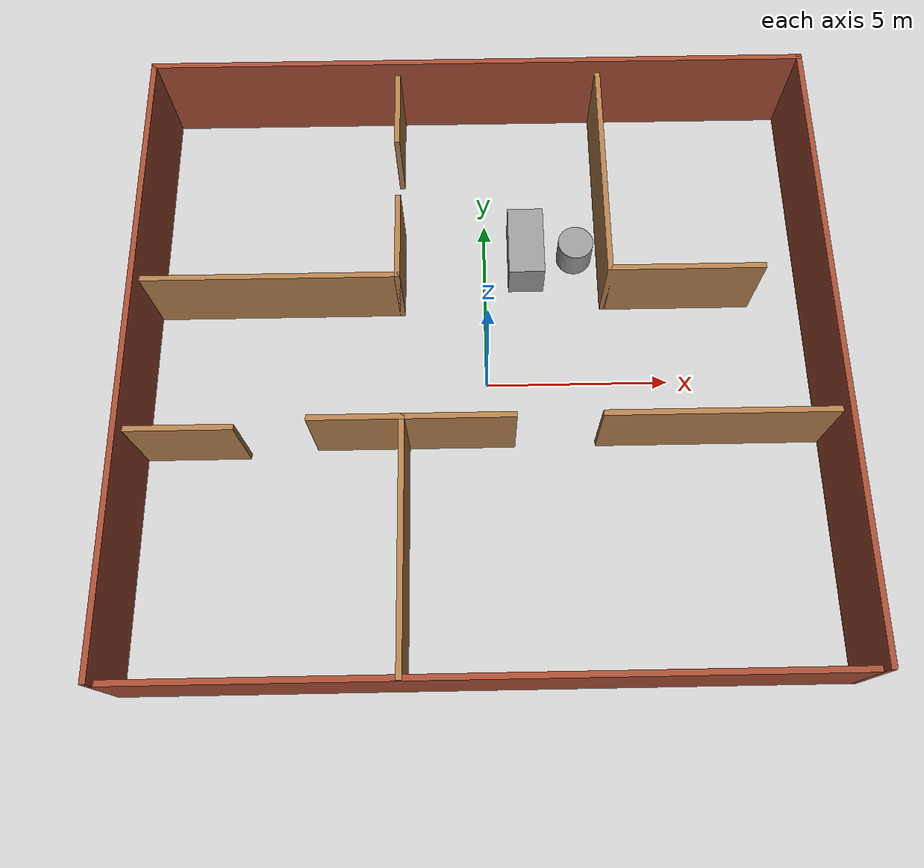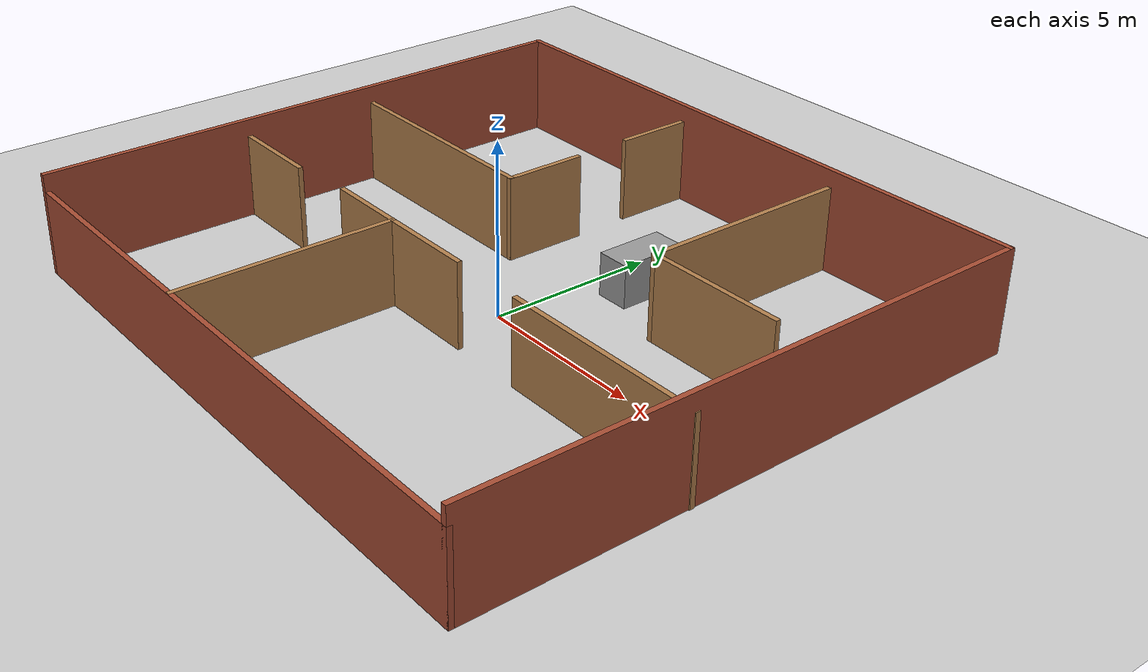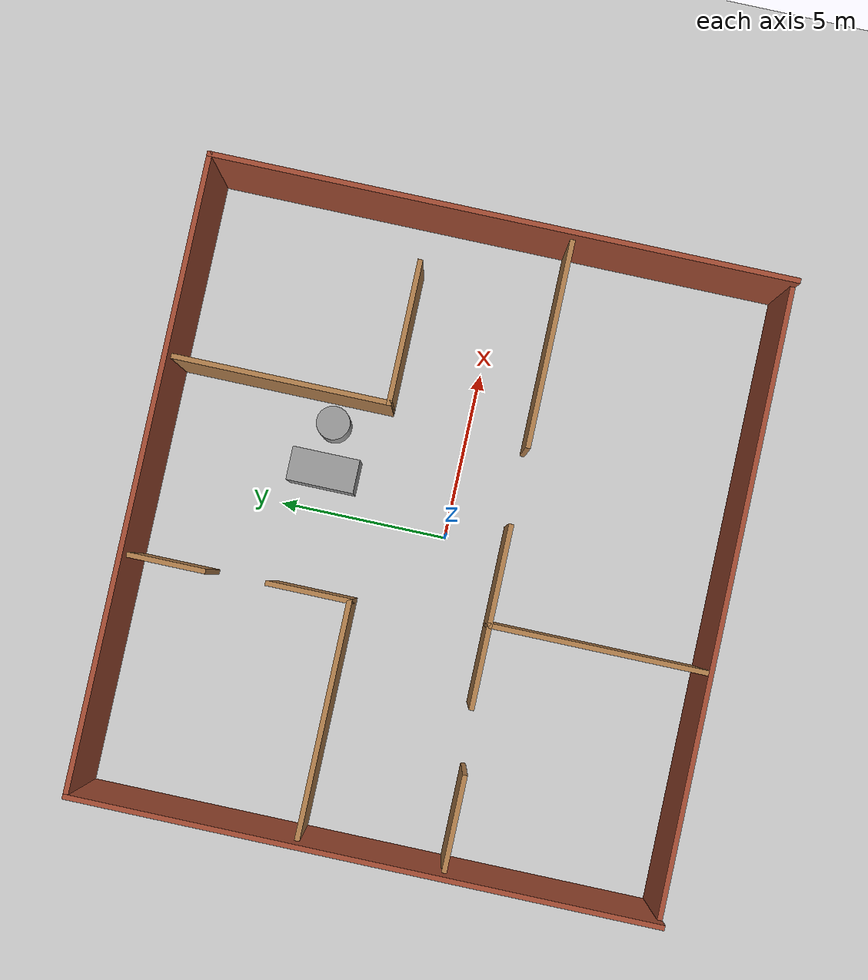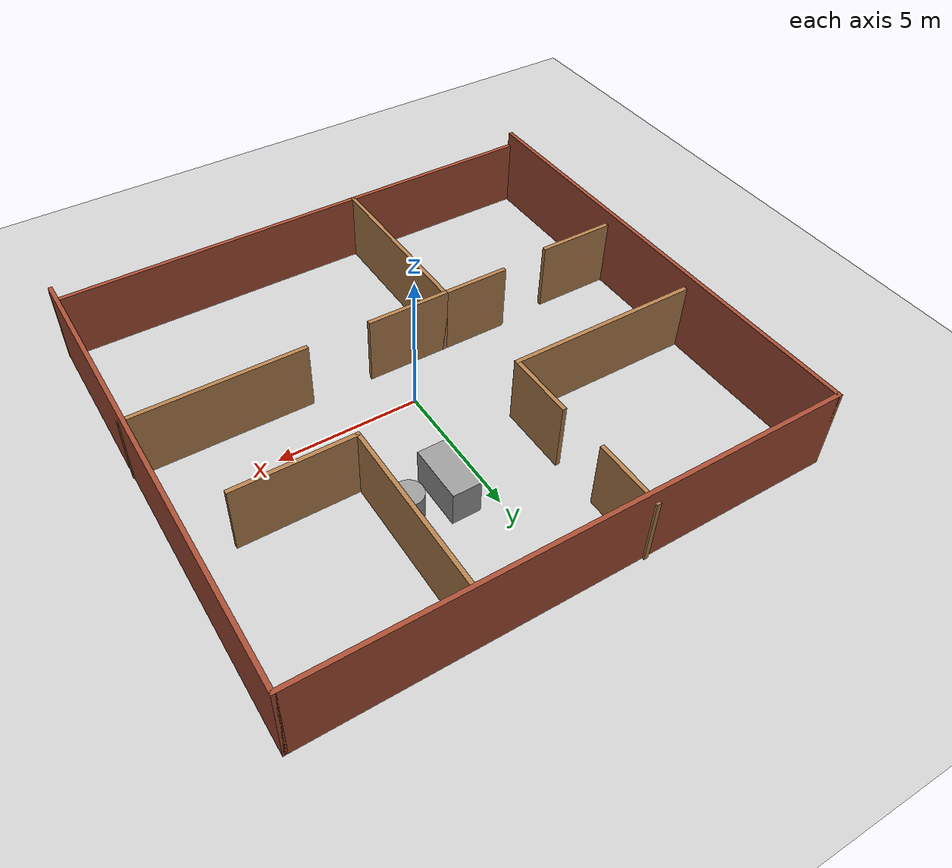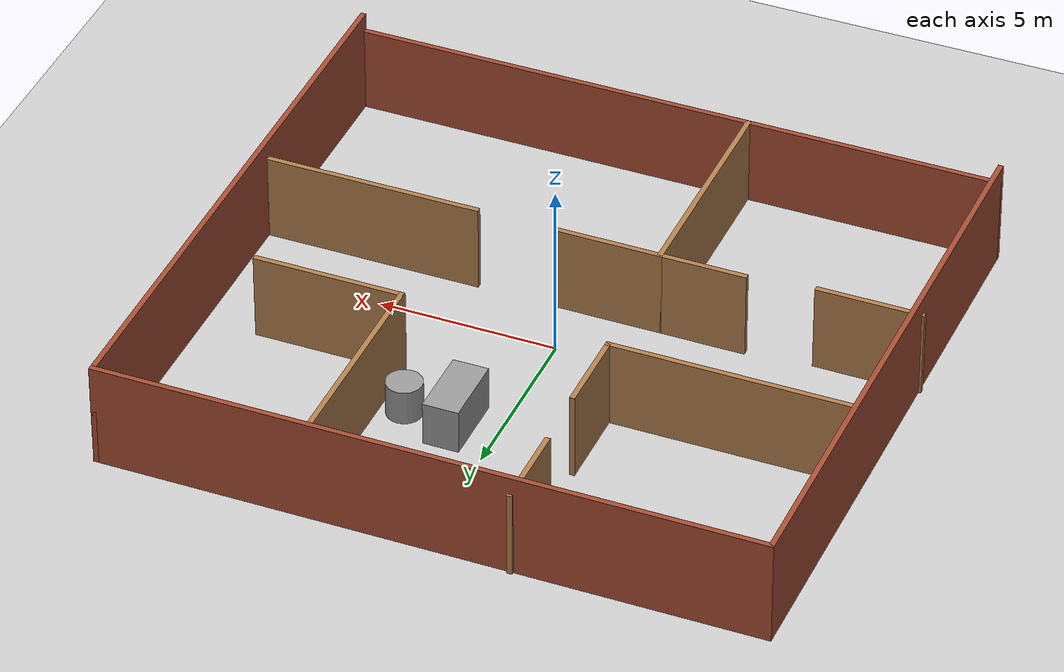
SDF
<sdf version="1.7">
 <world name="default">
  <model name="ground_plane">
   <static>1</static>
   <link name="link">
    <collision name="collision">
     <geometry><plane><normal>0 0 1</normal><size>100 100</size></plane></geometry>
     <surface>
      <contact><collide_bitmask>65535</collide_bitmask></contact>
      <friction><ode><mu>100</mu><mu2>50</mu2></ode></friction>
     </surface>
    </collision>
    <visual name="visual">
     <cast_shadows>0</cast_shadows>
     <geometry><plane><normal>0 0 1</normal><size>100 100</size></plane></geometry>
     <material>
      <script><uri>file://media/materials/scripts/gazebo.material</uri><name>Gazebo/Grey</name></script>
     </material>
    </visual>
   </link>
  </model>
  <gravity>0 0 -9.8</gravity>
  <magnetic_field>6e-06 2.3e-05 -4.2e-05</magnetic_field>
  <atmosphere type="adiabatic"/>
  <physics type="ode">
   <max_step_size>0.001</max_step_size>
   <real_time_factor>1</real_time_factor>
   <real_time_update_rate>1000</real_time_update_rate>
  </physics>
  <scene><ambient>0.4 0.4 0.4 1</ambient><background>0.7 0.7 0.7 1</background><shadows>1</shadows></scene>
  <spherical_coordinates>
   <surface_model>EARTH_WGS84</surface_model>
   <latitude_deg>0</latitude_deg>
   <longitude_deg>0</longitude_deg>
   <elevation>0</elevation>
   <heading_deg>0</heading_deg>
  </spherical_coordinates>
  <model name="world">
   <pose>-0.14492 0.35496 0 0 -0 0</pose>
   <link name="Wall_46">
    <collision name="Wall_46_Collision">
     <geometry><box><size>17 0.15 3</size></box></geometry>
     <pose>0 0 1.5 0 -0 0</pose>
    </collision>
    <visual name="Wall_46_Visual">
     <pose>0 0 1.5 0 -0 0</pose>
     <geometry><box><size>17 0.15 3</size></box></geometry>
     <material>
      <script><uri>file://media/materials/scripts/gazebo.material</uri><name>Gazebo/Bricks</name></script>
      <ambient>1 1 1 1</ambient>
     </material>
     <meta><layer>0</layer></meta>
    </visual>
    <pose>-9.15908 -0.03696 0 0 -0 1.5708</pose>
   </link>
   <link name="Wall_48">
    <collision name="Wall_48_Collision">
     <geometry><box><size>18.5 0.15 3</size></box></geometry>
     <pose>0 0 1.5 0 -0 0</pose>
    </collision>
    <visual name="Wall_48_Visual">
     <pose>0 0 1.5 0 -0 0</pose>
     <geometry><box><size>18.5 0.15 3</size></box></geometry>
     <material>
      <script><uri>file://media/materials/scripts/gazebo.material</uri><name>Gazebo/Bricks</name></script>
      <ambient>1 1 1 1</ambient>
     </material>
     <meta><layer>0</layer></meta>
    </visual>
    <pose>0.01592 8.38804 0 0 -0 0</pose>
   </link>
   <link name="Wall_49">
    <collision name="Wall_49_Collision">
     <geometry><box><size>17 0.15 3</size></box></geometry>
     <pose>0 0 1.5 0 -0 0</pose>
    </collision>
    <visual name="Wall_49_Visual">
     <pose>0 0 1.5 0 -0 0</pose>
     <geometry><box><size>17 0.15 3</size></box></geometry>
     <material>
      <script><uri>file://media/materials/scripts/gazebo.material</uri><name>Gazebo/Bricks</name></script>
      <ambient>1 1 1 1</ambient>
     </material>
     <meta><layer>0</layer></meta>
    </visual>
    <pose>9.19092 -0.03696 0 0 -0 -1.5708</pose>
   </link>
   <link name="Wall_55">
    <collision name="Wall_55_Collision">
     <geometry><box><size>7 0.15 2.5</size></box></geometry>
     <pose>0 0 1.25 0 -0 0</pose>
    </collision>
    <visual name="Wall_55_Visual">
     <pose>0 0 1.25 0 -0 0</pose>
     <geometry><box><size>7 0.15 2.5</size></box></geometry>
     <material>
      <script><uri>file://media/materials/scripts/gazebo.material</uri><name>Gazebo/Wood</name></script>
      <ambient>1 1 1 1</ambient>
     </material>
     <meta><layer>0</layer></meta>
    </visual>
    <pose>-5.65662 1.90386 0 0 -0 0</pose>
   </link>
   <link name="Wall_56">
    <collision name="Wall_56_Collision">
     <geometry><box><size>2.5 0.15 2.5</size></box></geometry>
     <pose>0 0 1.25 0 -0 0</pose>
    </collision>
    <visual name="Wall_56_Visual">
     <pose>0 0 1.25 0 -0 0</pose>
     <geometry><box><size>2.5 0.15 2.5</size></box></geometry>
     <material>
      <script><uri>file://media/materials/scripts/gazebo.material</uri><name>Gazebo/Wood</name></script>
      <ambient>1 1 1 1</ambient>
     </material>
     <meta><layer>0</layer></meta>
    </visual>
    <pose>-2.23162 3.07886 0 0 -0 1.5708</pose>
   </link>
   <link name="Wall_58">
    <collision name="Wall_58_Collision">
     <geometry><box><size>3 0.15 2.5</size></box></geometry>
     <pose>0 0 1.25 0 -0 0</pose>
    </collision>
    <visual name="Wall_58_Visual">
     <pose>0 0 1.25 0 -0 0</pose>
     <geometry><box><size>3 0.15 2.5</size></box></geometry>
     <material>
      <script><uri>file://media/materials/scripts/gazebo.material</uri><name>Gazebo/Wood</name></script>
      <ambient>1 1 1 1</ambient>
     </material>
     <meta><layer>0</layer></meta>
    </visual>
    <pose>-7.79689 -2.30425 0 0 -0 0</pose>
   </link>
   <link name="Wall_62">
    <collision name="Wall_62_Collision">
     <geometry><box><size>6.5 0.15 2.5</size></box></geometry>
     <pose>0 0 1.25 0 -0 0</pose>
    </collision>
    <visual name="Wall_62_Visual">
     <pose>0 0 1.25 0 -0 0</pose>
     <geometry><box><size>6.5 0.15 2.5</size></box></geometry>
     <material>
      <script><uri>file://media/materials/scripts/gazebo.material</uri><name>Gazebo/Wood</name></script>
      <ambient>1 1 1 1</ambient>
     </material>
     <meta><layer>0</layer></meta>
    </visual>
    <pose>-2.06811 -5.26884 0 0 -0 -1.5708</pose>
   </link>
   <link name="Wall_66">
    <collision name="Wall_66_Collision">
     <geometry><box><size>18.5 0.15 2.5</size></box></geometry>
     <pose>0 0 1.25 0 -0 0</pose>
    </collision>
    <visual name="Wall_66_Visual">
     <pose>0 0 1.25 0 -0 0</pose>
     <geometry><box><size>18.5 0.15 2.5</size></box></geometry>
     <material>
      <script><uri>file://media/materials/scripts/gazebo.material</uri><name>Gazebo/Bricks</name></script>
      <ambient>1 1 1 1</ambient>
     </material>
     <meta><layer>0</layer></meta>
    </visual>
    <pose>0.01592 -8.46196 0 0 -0 0</pose>
   </link>
   <link name="Wall_68">
    <collision name="Wall_68_Collision">
     <geometry><box><size>3 0.15 2.5</size></box></geometry>
     <pose>0 0 1.25 0 -0 0</pose>
    </collision>
    <visual name="Wall_68_Visual">
     <pose>0 0 1.25 0 -0 0</pose>
     <geometry><box><size>3 0.15 2.5</size></box></geometry>
     <material>
      <script><uri>file://media/materials/scripts/gazebo.material</uri><name>Gazebo/Wood</name></script>
      <ambient>1 1 1 1</ambient>
     </material>
     <meta><layer>0</layer></meta>
    </visual>
    <pose>-0.643109 -2.09384 0 0 -0 0</pose>
   </link>
   <link name="Wall_70">
    <collision name="Wall_70_Collision">
     <geometry><box><size>2.5 0.15 2.5</size></box></geometry>
     <pose>0 0 1.25 0 -0 0</pose>
    </collision>
    <visual name="Wall_70_Visual">
     <pose>0 0 1.25 0 -0 0</pose>
     <geometry><box><size>2.5 0.15 2.5</size></box></geometry>
     <material>
      <script><uri>file://media/materials/scripts/gazebo.material</uri><name>Gazebo/Wood</name></script>
      <ambient>1 1 1 1</ambient>
     </material>
     <meta><layer>0</layer></meta>
    </visual>
    <pose>-3.24311 -2.09384 0 0 -0 3.14159</pose>
   </link>
   <link name="Wall_72">
    <collision name="Wall_72_Collision">
     <geometry><box><size>6.25 0.15 2.5</size></box></geometry>
     <pose>0 0 1.25 0 -0 0</pose>
    </collision>
    <visual name="Wall_72_Visual">
     <pose>0 0 1.25 0 -0 0</pose>
     <geometry><box><size>6.25 0.15 2.5</size></box></geometry>
     <material>
      <script><uri>file://media/materials/scripts/gazebo.material</uri><name>Gazebo/Wood</name></script>
      <ambient>1 1 1 1</ambient>
     </material>
     <meta><layer>0</layer></meta>
    </visual>
    <pose>6.17188 -2.09384 0 0 -0 0</pose>
   </link>
   <link name="Wall_76">
    <collision name="Wall_76_Collision">
     <geometry><box><size>6.5 0.15 2.5</size></box></geometry>
     <pose>0 0 1.25 0 -0 0</pose>
    </collision>
    <visual name="Wall_76_Visual">
     <pose>0 0 1.25 0 -0 0</pose>
     <geometry><box><size>6.5 0.15 2.5</size></box></geometry>
     <material>
      <script><uri>file://media/materials/scripts/gazebo.material</uri><name>Gazebo/Wood</name></script>
      <ambient>1 1 1 1</ambient>
     </material>
     <meta><layer>0</layer></meta>
    </visual>
    <pose>3.47256 5.18128 0 0 -0 -1.5708</pose>
   </link>
   <link name="Wall_77">
    <collision name="Wall_77_Collision">
     <geometry><box><size>4.25 0.15 2.5</size></box></geometry>
     <pose>0 0 1.25 0 -0 0</pose>
    </collision>
    <visual name="Wall_77_Visual">
     <pose>0 0 1.25 0 -0 0</pose>
     <geometry><box><size>4.25 0.15 2.5</size></box></geometry>
     <material>
      <script><uri>file://media/materials/scripts/gazebo.material</uri><name>Gazebo/Wood</name></script>
      <ambient>1 1 1 1</ambient>
     </material>
     <meta><layer>0</layer></meta>
    </visual>
    <pose>5.52256 2.00628 0 0 -0 0</pose>
   </link>
   <link name="Wall_79">
    <collision name="Wall_79_Collision">
     <geometry><box><size>2.5 0.15 2.5</size></box></geometry>
     <pose>0 0 1.25 0 -0 0</pose>
    </collision>
    <visual name="Wall_79_Visual">
     <pose>0 0 1.25 0 -0 0</pose>
     <geometry><box><size>2.5 0.15 2.5</size></box></geometry>
     <material>
      <script><uri>file://media/materials/scripts/gazebo.material</uri><name>Gazebo/Wood</name></script>
      <ambient>1 1 1 1</ambient>
     </material>
     <meta><layer>0</layer></meta>
    </visual>
    <pose>-2.27851 7.28696 0 0 -0 1.5708</pose>
   </link>
   <static>1</static>
  </model>
  <light name="sun" type="directional">
   <pose>1.47869 -0.666722 10 0 -0 0</pose>
   <diffuse>0.8 0.8 0.8 1</diffuse>
   <specular>0.2 0.2 0.2 1</specular>
   <attenuation>
    <range>1000</range>
    <constant>0.9</constant>
    <linear>0.01</linear>
    <quadratic>0.001</quadratic>
   </attenuation>
   <direction>-0.5 0.1 -0.9</direction>
  </light>
  <model name="unit_box">
   <link name="link">
    <inertial>
     <mass>1</mass>
     <inertia>
      <ixx>0.166667</ixx>
      <ixy>0</ixy>
      <ixz>0</ixz>
      <iyy>0.166667</iyy>
      <iyz>0</iyz>
      <izz>0.166667</izz>
     </inertia>
    </inertial>
    <visual name="visual">
     <geometry><box><size>2 1 1.5</size></box></geometry>
     <material>
      <script><name>Gazebo/Grey</name><uri>file://media/materials/scripts/gazebo.material</uri></script>
      <shader type="pixel"><normal_map>__default__</normal_map></shader>
      <ambient>0.3 0.3 0.3 1</ambient>
      <diffuse>0.7 0.7 0.7 1</diffuse>
      <specular>0.01 0.01 0.01 1</specular>
      <emissive>0 0 0 1</emissive>
     </material>
    </visual>
    <collision name="collision">
     <geometry><box><size>2 1 1.5</size></box></geometry>
     <surface>
      <friction>
       <ode><mu>1</mu><mu2>1</mu2><fdir1>0 0 0</fdir1><slip1>0</slip1><slip2>0</slip2></ode>
       <torsional>
        <coefficient>1</coefficient>
        <patch_radius>0</patch_radius>
        <surface_radius>0</surface_radius>
        <use_patch_radius>1</use_patch_radius>
        <ode><slip>0</slip></ode>
       </torsional>
      </friction>
      <bounce><restitution_coefficient>0</restitution_coefficient><threshold>1e+06</threshold></bounce>
      <contact>
       <collide_without_contact>0</collide_without_contact>
       <collide_without_contact_bitmask>1</collide_without_contact_bitmask>
       <collide_bitmask>1</collide_bitmask>
       <ode>
        <soft_cfm>0</soft_cfm>
        <soft_erp>0.2</soft_erp>
        <kp>1e+13</kp>
        <kd>1</kd>
        <max_vel>0.01</max_vel>
        <min_depth>0</min_depth>
       </ode>
       <bullet>
        <split_impulse>1</split_impulse>
        <split_impulse_penetration_threshold>-0.01</split_impulse_penetration_threshold>
        <soft_cfm>0</soft_cfm>
        <soft_erp>0.2</soft_erp>
        <kp>1e+13</kp>
        <kd>1</kd>
       </bullet>
      </contact>
     </surface>
    </collision>
   </link>
   <link name="link_0">
    <inertial>
     <mass>1</mass>
     <inertia><ixx>0.145833</ixx><ixy>0</ixy><ixz>0</ixz><iyy>0.145833</iyy><iyz>0</iyz><izz>0.125</izz></inertia>
    </inertial>
    <pose>0.024519 -1.42638 0 0 -0 0</pose>
    <visual name="visual">
     <geometry><cylinder><radius>0.5</radius><length>1</length></cylinder></geometry>
     <material>
      <lighting>1</lighting>
      <script><uri>file://media/materials/scripts/gazebo.material</uri><name>Gazebo/Grey</name></script>
      <shader type="pixel"/>
     </material>
    </visual>
    <collision name="collision">
     <geometry><cylinder><radius>0.5</radius><length>1</length></cylinder></geometry>
     <surface>
      <friction>
       <ode><mu>1</mu><mu2>1</mu2><fdir1>0 0 0</fdir1><slip1>0</slip1><slip2>0</slip2></ode>
       <torsional>
        <coefficient>1</coefficient>
        <patch_radius>0</patch_radius>
        <surface_radius>0</surface_radius>
        <use_patch_radius>1</use_patch_radius>
        <ode><slip>0</slip></ode>
       </torsional>
      </friction>
      <bounce><restitution_coefficient>0</restitution_coefficient><threshold>1e+06</threshold></bounce>
      <contact>
       <collide_without_contact>0</collide_without_contact>
       <collide_without_contact_bitmask>1</collide_without_contact_bitmask>
       <collide_bitmask>1</collide_bitmask>
       <ode>
        <soft_cfm>0</soft_cfm>
        <soft_erp>0.2</soft_erp>
        <kp>1e+13</kp>
        <kd>1</kd>
        <max_vel>0.01</max_vel>
        <min_depth>0</min_depth>
       </ode>
       <bullet>
        <split_impulse>1</split_impulse>
        <split_impulse_penetration_threshold>-0.01</split_impulse_penetration_threshold>
        <soft_cfm>0</soft_cfm>
        <soft_erp>0.2</soft_erp>
        <kp>1e+13</kp>
        <kd>1</kd>
       </bullet>
      </contact>
     </surface>
    </collision>
   </link>
   <static>0</static>
   <pose>1.16147 3.90775 0.5 0 -0 1.57141</pose>
  </model>
 </world>
</sdf>
